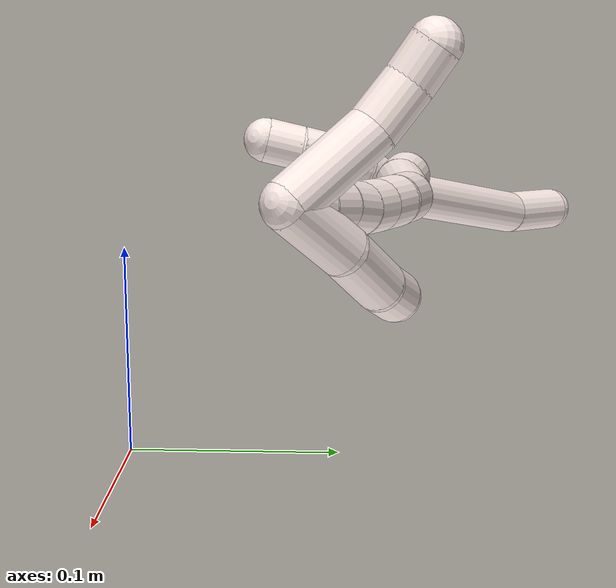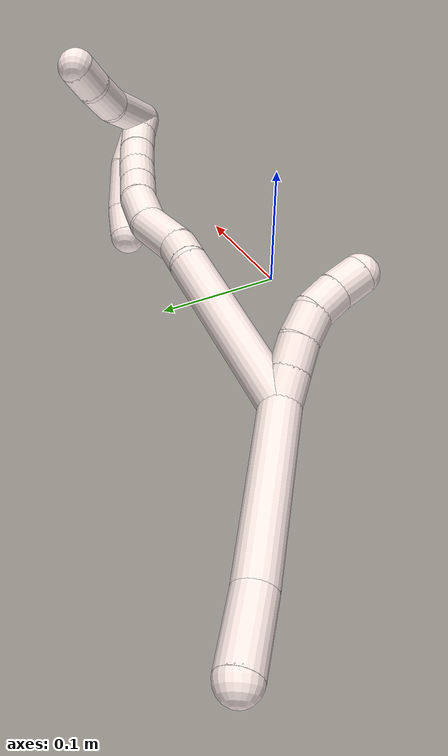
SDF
<sdf version="1.7">
 <world name="default">
  <model name="11">
   <static>0</static>
   <link name="11">
    <collision name="collision-cylinder-e_1_2_8">
     <pose>0.00629 0.001474 0.052692 -0.027973 0.118764 -0.001663</pose>
     <geometry><cylinder><radius>0.0125</radius><length>0.106173</length></cylinder></geometry>
     <surface>
      <friction><ode><mu>1.16</mu><mu2>1.16</mu2><slip1>0</slip1><slip2>0</slip2></ode></friction>
      <contact><ode><kp>1e+06</kp><kd>1</kd><max_vel>0</max_vel><min_depth>0.001</min_depth></ode></contact>
     </surface>
    </collision>
    <visual name="visual-cylinder-e_1_2_8">
     <pose>0.00629 0.001474 0.052692 -0.027973 0.118764 -0.001663</pose>
     <geometry><cylinder><radius>0.0125</radius><length>0.106173</length></cylinder></geometry>
     <material><ambient>1 0.933333 0.909804 1</ambient></material>
    </visual>
    <collision name="collision-cylinder-e_2_8_6">
     <pose>0.018125 0.001589 0.126541 0.064184 0.255812 0.008257</pose>
     <geometry><cylinder><radius>0.0125</radius><length>0.043827</length></cylinder></geometry>
     <surface>
      <friction><ode><mu>1.16</mu><mu2>1.16</mu2><slip1>0</slip1><slip2>0</slip2></ode></friction>
      <contact><ode><kp>1e+06</kp><kd>1</kd><max_vel>0</max_vel><min_depth>0.001</min_depth></ode></contact>
     </surface>
    </collision>
    <visual name="visual-cylinder-e_2_8_6">
     <pose>0.018125 0.001589 0.126541 0.064184 0.255812 0.008257</pose>
     <geometry><cylinder><radius>0.0125</radius><length>0.043827</length></cylinder></geometry>
     <material><ambient>1 0.933333 0.909804 1</ambient></material>
    </visual>
    <collision name="collision-cylinder-e_1_2_9">
     <pose>-0.000525 -0.002909 -0.009553 2.84596 -0.052486 -0.348985</pose>
     <geometry><cylinder><radius>0.0125</radius><length>0.02</length></cylinder></geometry>
     <surface>
      <friction><ode><mu>1.16</mu><mu2>1.16</mu2><slip1>0</slip1><slip2>0</slip2></ode></friction>
      <contact><ode><kp>1e+06</kp><kd>1</kd><max_vel>0</max_vel><min_depth>0.001</min_depth></ode></contact>
     </surface>
    </collision>
    <visual name="visual-cylinder-e_1_2_9">
     <pose>-0.000525 -0.002909 -0.009553 2.84596 -0.052486 -0.348985</pose>
     <geometry><cylinder><radius>0.0125</radius><length>0.02</length></cylinder></geometry>
     <material><ambient>1 0.933333 0.909804 1</ambient></material>
    </visual>
    <collision name="collision-cylinder-e_2_9_10">
     <pose>-0.001396 -0.009063 -0.028559 2.81096 -0.034724 -0.2074</pose>
     <geometry><cylinder><radius>0.0125</radius><length>0.02</length></cylinder></geometry>
     <surface>
      <friction><ode><mu>1.16</mu><mu2>1.16</mu2><slip1>0</slip1><slip2>0</slip2></ode></friction>
      <contact><ode><kp>1e+06</kp><kd>1</kd><max_vel>0</max_vel><min_depth>0.001</min_depth></ode></contact>
     </surface>
    </collision>
    <visual name="visual-cylinder-e_2_9_10">
     <pose>-0.001396 -0.009063 -0.028559 2.81096 -0.034724 -0.2074</pose>
     <geometry><cylinder><radius>0.0125</radius><length>0.02</length></cylinder></geometry>
     <material><ambient>1 0.933333 0.909804 1</ambient></material>
    </visual>
    <collision name="collision-cylinder-e_3_10_11">
     <pose>-0.003475 -0.016088 -0.047106 2.74768 -0.173996 -0.824132</pose>
     <geometry><cylinder><radius>0.0125</radius><length>0.02</length></cylinder></geometry>
     <surface>
      <friction><ode><mu>1.16</mu><mu2>1.16</mu2><slip1>0</slip1><slip2>0</slip2></ode></friction>
      <contact><ode><kp>1e+06</kp><kd>1</kd><max_vel>0</max_vel><min_depth>0.001</min_depth></ode></contact>
     </surface>
    </collision>
    <visual name="visual-cylinder-e_3_10_11">
     <pose>-0.003475 -0.016088 -0.047106 2.74768 -0.173996 -0.824132</pose>
     <geometry><cylinder><radius>0.0125</radius><length>0.02</length></cylinder></geometry>
     <material><ambient>1 0.933333 0.909804 1</ambient></material>
    </visual>
    <collision name="collision-cylinder-e_4_11_12">
     <pose>-0.009719 -0.024621 -0.063754 2.57997 -0.468197 -1.38171</pose>
     <geometry><cylinder><radius>0.0125</radius><length>0.02</length></cylinder></geometry>
     <surface>
      <friction><ode><mu>1.16</mu><mu2>1.16</mu2><slip1>0</slip1><slip2>0</slip2></ode></friction>
      <contact><ode><kp>1e+06</kp><kd>1</kd><max_vel>0</max_vel><min_depth>0.001</min_depth></ode></contact>
     </surface>
    </collision>
    <visual name="visual-cylinder-e_4_11_12">
     <pose>-0.009719 -0.024621 -0.063754 2.57997 -0.468197 -1.38171</pose>
     <geometry><cylinder><radius>0.0125</radius><length>0.02</length></cylinder></geometry>
     <material><ambient>1 0.933333 0.909804 1</ambient></material>
    </visual>
    <collision name="collision-cylinder-e_5_12_5">
     <pose>-0.019315 -0.03478 -0.07801 2.46279 -0.533248 -1.31687</pose>
     <geometry><cylinder><radius>0.0125</radius><length>0.02</length></cylinder></geometry>
     <surface>
      <friction><ode><mu>1.16</mu><mu2>1.16</mu2><slip1>0</slip1><slip2>0</slip2></ode></friction>
      <contact><ode><kp>1e+06</kp><kd>1</kd><max_vel>0</max_vel><min_depth>0.001</min_depth></ode></contact>
     </surface>
    </collision>
    <visual name="visual-cylinder-e_5_12_5">
     <pose>-0.019315 -0.03478 -0.07801 2.46279 -0.533248 -1.31687</pose>
     <geometry><cylinder><radius>0.0125</radius><length>0.02</length></cylinder></geometry>
     <material><ambient>1 0.933333 0.909804 1</ambient></material>
    </visual>
    <collision name="collision-cylinder-e_1_2_13">
     <pose>0.02114 0.019916 -0.04905 -2.7559 0.379929 -1.55536</pose>
     <geometry><cylinder><radius>0.0125</radius><length>0.114009</length></cylinder></geometry>
     <surface>
      <friction><ode><mu>1.16</mu><mu2>1.16</mu2><slip1>0</slip1><slip2>0</slip2></ode></friction>
      <contact><ode><kp>1e+06</kp><kd>1</kd><max_vel>0</max_vel><min_depth>0.001</min_depth></ode></contact>
     </surface>
    </collision>
    <visual name="visual-cylinder-e_1_2_13">
     <pose>0.02114 0.019916 -0.04905 -2.7559 0.379929 -1.55536</pose>
     <geometry><cylinder><radius>0.0125</radius><length>0.114009</length></cylinder></geometry>
     <material><ambient>1 0.933333 0.909804 1</ambient></material>
    </visual>
    <collision name="collision-cylinder-e_2_13_14">
     <pose>0.043188 0.044795 -0.1071 -2.63757 0.088052 -0.338906</pose>
     <geometry><cylinder><radius>0.0125</radius><length>0.020635</length></cylinder></geometry>
     <surface>
      <friction><ode><mu>1.16</mu><mu2>1.16</mu2><slip1>0</slip1><slip2>0</slip2></ode></friction>
      <contact><ode><kp>1e+06</kp><kd>1</kd><max_vel>0</max_vel><min_depth>0.001</min_depth></ode></contact>
     </surface>
    </collision>
    <visual name="visual-cylinder-e_2_13_14">
     <pose>0.043188 0.044795 -0.1071 -2.63757 0.088052 -0.338906</pose>
     <geometry><cylinder><radius>0.0125</radius><length>0.020635</length></cylinder></geometry>
     <material><ambient>1 0.933333 0.909804 1</ambient></material>
    </visual>
    <collision name="collision-cylinder-e_3_14_15">
     <pose>0.049139 0.060729 -0.12916 -2.44295 0.287528 -0.756551</pose>
     <geometry><cylinder><radius>0.0125</radius><length>0.035573</length></cylinder></geometry>
     <surface>
      <friction><ode><mu>1.16</mu><mu2>1.16</mu2><slip1>0</slip1><slip2>0</slip2></ode></friction>
      <contact><ode><kp>1e+06</kp><kd>1</kd><max_vel>0</max_vel><min_depth>0.001</min_depth></ode></contact>
     </surface>
    </collision>
    <visual name="visual-cylinder-e_3_14_15">
     <pose>0.049139 0.060729 -0.12916 -2.44295 0.287528 -0.756551</pose>
     <geometry><cylinder><radius>0.0125</radius><length>0.035573</length></cylinder></geometry>
     <material><ambient>1 0.933333 0.909804 1</ambient></material>
    </visual>
    <collision name="collision-cylinder-e_4_15_16">
     <pose>0.056064 0.076978 -0.155374 -2.75997 0.131897 -0.6589</pose>
     <geometry><cylinder><radius>0.0125</radius><length>0.028595</length></cylinder></geometry>
     <surface>
      <friction><ode><mu>1.16</mu><mu2>1.16</mu2><slip1>0</slip1><slip2>0</slip2></ode></friction>
      <contact><ode><kp>1e+06</kp><kd>1</kd><max_vel>0</max_vel><min_depth>0.001</min_depth></ode></contact>
     </surface>
    </collision>
    <visual name="visual-cylinder-e_4_15_16">
     <pose>0.056064 0.076978 -0.155374 -2.75997 0.131897 -0.6589</pose>
     <geometry><cylinder><radius>0.0125</radius><length>0.028595</length></cylinder></geometry>
     <material><ambient>1 0.933333 0.909804 1</ambient></material>
    </visual>
    <collision name="collision-cylinder-e_5_16_17">
     <pose>0.057276 0.085082 -0.178508 -2.86571 -0.064291 0.455238</pose>
     <geometry><cylinder><radius>0.0125</radius><length>0.020789</length></cylinder></geometry>
     <surface>
      <friction><ode><mu>1.16</mu><mu2>1.16</mu2><slip1>0</slip1><slip2>0</slip2></ode></friction>
      <contact><ode><kp>1e+06</kp><kd>1</kd><max_vel>0</max_vel><min_depth>0.001</min_depth></ode></contact>
     </surface>
    </collision>
    <visual name="visual-cylinder-e_5_16_17">
     <pose>0.057276 0.085082 -0.178508 -2.86571 -0.064291 0.455238</pose>
     <geometry><cylinder><radius>0.0125</radius><length>0.020789</length></cylinder></geometry>
     <material><ambient>1 0.933333 0.909804 1</ambient></material>
    </visual>
    <collision name="collision-cylinder-e_6_17_18">
     <pose>0.056291 0.090497 -0.198218 -2.8815 -0.031512 0.239813</pose>
     <geometry><cylinder><radius>0.0125</radius><length>0.020147</length></cylinder></geometry>
     <surface>
      <friction><ode><mu>1.16</mu><mu2>1.16</mu2><slip1>0</slip1><slip2>0</slip2></ode></friction>
      <contact><ode><kp>1e+06</kp><kd>1</kd><max_vel>0</max_vel><min_depth>0.001</min_depth></ode></contact>
     </surface>
    </collision>
    <visual name="visual-cylinder-e_6_17_18">
     <pose>0.056291 0.090497 -0.198218 -2.8815 -0.031512 0.239813</pose>
     <geometry><cylinder><radius>0.0125</radius><length>0.020147</length></cylinder></geometry>
     <material><ambient>1 0.933333 0.909804 1</ambient></material>
    </visual>
    <collision name="collision-cylinder-e_7_18_19">
     <pose>0.056058 0.09455 -0.217922 -2.99594 0.008382 -0.114773</pose>
     <geometry><cylinder><radius>0.0125</radius><length>0.020162</length></cylinder></geometry>
     <surface>
      <friction><ode><mu>1.16</mu><mu2>1.16</mu2><slip1>0</slip1><slip2>0</slip2></ode></friction>
      <contact><ode><kp>1e+06</kp><kd>1</kd><max_vel>0</max_vel><min_depth>0.001</min_depth></ode></contact>
     </surface>
    </collision>
    <visual name="visual-cylinder-e_7_18_19">
     <pose>0.056058 0.09455 -0.217922 -2.99594 0.008382 -0.114773</pose>
     <geometry><cylinder><radius>0.0125</radius><length>0.020162</length></cylinder></geometry>
     <material><ambient>1 0.933333 0.909804 1</ambient></material>
    </visual>
    <collision name="collision-cylinder-e_8_19_20">
     <pose>0.055622 0.097513 -0.237784 -2.99105 -0.052042 0.664622</pose>
     <geometry><cylinder><radius>0.0125</radius><length>0.020029</length></cylinder></geometry>
     <surface>
      <friction><ode><mu>1.16</mu><mu2>1.16</mu2><slip1>0</slip1><slip2>0</slip2></ode></friction>
      <contact><ode><kp>1e+06</kp><kd>1</kd><max_vel>0</max_vel><min_depth>0.001</min_depth></ode></contact>
     </surface>
    </collision>
    <visual name="visual-cylinder-e_8_19_20">
     <pose>0.055622 0.097513 -0.237784 -2.99105 -0.052042 0.664622</pose>
     <geometry><cylinder><radius>0.0125</radius><length>0.020029</length></cylinder></geometry>
     <material><ambient>1 0.933333 0.909804 1</ambient></material>
    </visual>
    <collision name="collision-cylinder-e_9_20_1">
     <pose>0.054026 0.099621 -0.257626 -3.08054 -0.107285 2.10737</pose>
     <geometry><cylinder><radius>0.0125</radius><length>0.020062</length></cylinder></geometry>
     <surface>
      <friction><ode><mu>1.16</mu><mu2>1.16</mu2><slip1>0</slip1><slip2>0</slip2></ode></friction>
      <contact><ode><kp>1e+06</kp><kd>1</kd><max_vel>0</max_vel><min_depth>0.001</min_depth></ode></contact>
     </surface>
    </collision>
    <visual name="visual-cylinder-e_9_20_1">
     <pose>0.054026 0.099621 -0.257626 -3.08054 -0.107285 2.10737</pose>
     <geometry><cylinder><radius>0.0125</radius><length>0.020062</length></cylinder></geometry>
     <material><ambient>1 0.933333 0.909804 1</ambient></material>
    </visual>
    <collision name="collision-cylinder-e_1_1_21">
     <pose>0.072526 0.091365 -0.252593 0.534073 0.843726 0.244338</pose>
     <geometry><cylinder><radius>0.0125</radius><length>0.052396</length></cylinder></geometry>
     <surface>
      <friction><ode><mu>1.16</mu><mu2>1.16</mu2><slip1>0</slip1><slip2>0</slip2></ode></friction>
      <contact><ode><kp>1e+06</kp><kd>1</kd><max_vel>0</max_vel><min_depth>0.001</min_depth></ode></contact>
     </surface>
    </collision>
    <visual name="visual-cylinder-e_1_1_21">
     <pose>0.072526 0.091365 -0.252593 0.534073 0.843726 0.244338</pose>
     <geometry><cylinder><radius>0.0125</radius><length>0.052396</length></cylinder></geometry>
     <material><ambient>1 0.933333 0.909804 1</ambient></material>
    </visual>
    <collision name="collision-cylinder-e_2_21_22">
     <pose>0.10349 0.076957 -0.233078 0.886147 1.00981 0.512993</pose>
     <geometry><cylinder><radius>0.0125</radius><length>0.026906</length></cylinder></geometry>
     <surface>
      <friction><ode><mu>1.16</mu><mu2>1.16</mu2><slip1>0</slip1><slip2>0</slip2></ode></friction>
      <contact><ode><kp>1e+06</kp><kd>1</kd><max_vel>0</max_vel><min_depth>0.001</min_depth></ode></contact>
     </surface>
    </collision>
    <visual name="visual-cylinder-e_2_21_22">
     <pose>0.10349 0.076957 -0.233078 0.886147 1.00981 0.512993</pose>
     <geometry><cylinder><radius>0.0125</radius><length>0.026906</length></cylinder></geometry>
     <material><ambient>1 0.933333 0.909804 1</ambient></material>
    </visual>
    <collision name="collision-cylinder-e_3_22_4">
     <pose>0.12446 0.067701 -0.227298 1.2451 1.1826 0.898187</pose>
     <geometry><cylinder><radius>0.0125</radius><length>0.020698</length></cylinder></geometry>
     <surface>
      <friction><ode><mu>1.16</mu><mu2>1.16</mu2><slip1>0</slip1><slip2>0</slip2></ode></friction>
      <contact><ode><kp>1e+06</kp><kd>1</kd><max_vel>0</max_vel><min_depth>0.001</min_depth></ode></contact>
     </surface>
    </collision>
    <visual name="visual-cylinder-e_3_22_4">
     <pose>0.12446 0.067701 -0.227298 1.2451 1.1826 0.898187</pose>
     <geometry><cylinder><radius>0.0125</radius><length>0.020698</length></cylinder></geometry>
     <material><ambient>1 0.933333 0.909804 1</ambient></material>
    </visual>
    <collision name="collision-cylinder-e_1_1_23">
     <pose>0.051197 0.108446 -0.249549 -0.427523 -0.088353 0.019191</pose>
     <geometry><cylinder><radius>0.0125</radius><length>0.039787</length></cylinder></geometry>
     <surface>
      <friction><ode><mu>1.16</mu><mu2>1.16</mu2><slip1>0</slip1><slip2>0</slip2></ode></friction>
      <contact><ode><kp>1e+06</kp><kd>1</kd><max_vel>0</max_vel><min_depth>0.001</min_depth></ode></contact>
     </surface>
    </collision>
    <visual name="visual-cylinder-e_1_1_23">
     <pose>0.051197 0.108446 -0.249549 -0.427523 -0.088353 0.019191</pose>
     <geometry><cylinder><radius>0.0125</radius><length>0.039787</length></cylinder></geometry>
     <material><ambient>1 0.933333 0.909804 1</ambient></material>
    </visual>
    <collision name="collision-cylinder-e_2_23_24">
     <pose>0.045058 0.120403 -0.213552 -0.205349 -0.234512 0.024274</pose>
     <geometry><cylinder><radius>0.0125</radius><length>0.037732</length></cylinder></geometry>
     <surface>
      <friction><ode><mu>1.16</mu><mu2>1.16</mu2><slip1>0</slip1><slip2>0</slip2></ode></friction>
      <contact><ode><kp>1e+06</kp><kd>1</kd><max_vel>0</max_vel><min_depth>0.001</min_depth></ode></contact>
     </surface>
    </collision>
    <visual name="visual-cylinder-e_2_23_24">
     <pose>0.045058 0.120403 -0.213552 -0.205349 -0.234512 0.024274</pose>
     <geometry><cylinder><radius>0.0125</radius><length>0.037732</length></cylinder></geometry>
     <material><ambient>1 0.933333 0.909804 1</ambient></material>
    </visual>
    <collision name="collision-cylinder-e_3_24_3">
     <pose>0.03806 0.123703 -0.184665 0.040413 -0.234722 -0.004765</pose>
     <geometry><cylinder><radius>0.0125</radius><length>0.022481</length></cylinder></geometry>
     <surface>
      <friction><ode><mu>1.16</mu><mu2>1.16</mu2><slip1>0</slip1><slip2>0</slip2></ode></friction>
      <contact><ode><kp>1e+06</kp><kd>1</kd><max_vel>0</max_vel><min_depth>0.001</min_depth></ode></contact>
     </surface>
    </collision>
    <visual name="visual-cylinder-e_3_24_3">
     <pose>0.03806 0.123703 -0.184665 0.040413 -0.234722 -0.004765</pose>
     <geometry><cylinder><radius>0.0125</radius><length>0.022481</length></cylinder></geometry>
     <material><ambient>1 0.933333 0.909804 1</ambient></material>
    </visual>
    <collision name="collision-sphere-3">
     <pose>0.035445 0.123262 -0.173741 0 -0 0</pose>
     <geometry><sphere><radius>0.0125</radius></sphere></geometry>
     <surface>
      <friction><ode><mu>1.16</mu><mu2>1.16</mu2><slip1>0</slip1><slip2>0</slip2></ode></friction>
      <contact><ode><kp>1e+06</kp><kd>1</kd><max_vel>0</max_vel><min_depth>0.001</min_depth></ode></contact>
     </surface>
    </collision>
    <visual name="visual-sphere-3">
     <pose>0.035445 0.123262 -0.173741 0 -0 0</pose>
     <geometry><sphere><radius>0.0125</radius></sphere></geometry>
     <material><ambient>1 0.933333 0.909804 1</ambient></material>
    </visual>
    <collision name="collision-sphere-24">
     <pose>0.040674 0.124145 -0.195588 0 -0 0</pose>
     <geometry><sphere><radius>0.0125</radius></sphere></geometry>
     <surface>
      <friction><ode><mu>1.16</mu><mu2>1.16</mu2><slip1>0</slip1><slip2>0</slip2></ode></friction>
      <contact><ode><kp>1e+06</kp><kd>1</kd><max_vel>0</max_vel><min_depth>0.001</min_depth></ode></contact>
     </surface>
    </collision>
    <visual name="visual-sphere-24">
     <pose>0.040674 0.124145 -0.195588 0 -0 0</pose>
     <geometry><sphere><radius>0.0125</radius></sphere></geometry>
     <material><ambient>1 0.933333 0.909804 1</ambient></material>
    </visual>
    <collision name="collision-sphere-23">
     <pose>0.049442 0.116662 -0.231516 0 -0 0</pose>
     <geometry><sphere><radius>0.0125</radius></sphere></geometry>
     <surface>
      <friction><ode><mu>1.16</mu><mu2>1.16</mu2><slip1>0</slip1><slip2>0</slip2></ode></friction>
      <contact><ode><kp>1e+06</kp><kd>1</kd><max_vel>0</max_vel><min_depth>0.001</min_depth></ode></contact>
     </surface>
    </collision>
    <visual name="visual-sphere-23">
     <pose>0.049442 0.116662 -0.231516 0 -0 0</pose>
     <geometry><sphere><radius>0.0125</radius></sphere></geometry>
     <material><ambient>1 0.933333 0.909804 1</ambient></material>
    </visual>
    <collision name="collision-sphere-4">
     <pose>0.134039 0.06399 -0.226045 0 -0 0</pose>
     <geometry><sphere><radius>0.0125</radius></sphere></geometry>
     <surface>
      <friction><ode><mu>1.16</mu><mu2>1.16</mu2><slip1>0</slip1><slip2>0</slip2></ode></friction>
      <contact><ode><kp>1e+06</kp><kd>1</kd><max_vel>0</max_vel><min_depth>0.001</min_depth></ode></contact>
     </surface>
    </collision>
    <visual name="visual-sphere-4">
     <pose>0.134039 0.06399 -0.226045 0 -0 0</pose>
     <geometry><sphere><radius>0.0125</radius></sphere></geometry>
     <material><ambient>1 0.933333 0.909804 1</ambient></material>
    </visual>
    <collision name="collision-sphere-22">
     <pose>0.114881 0.071413 -0.228552 0 -0 0</pose>
     <geometry><sphere><radius>0.0125</radius></sphere></geometry>
     <surface>
      <friction><ode><mu>1.16</mu><mu2>1.16</mu2><slip1>0</slip1><slip2>0</slip2></ode></friction>
      <contact><ode><kp>1e+06</kp><kd>1</kd><max_vel>0</max_vel><min_depth>0.001</min_depth></ode></contact>
     </surface>
    </collision>
    <visual name="visual-sphere-22">
     <pose>0.114881 0.071413 -0.228552 0 -0 0</pose>
     <geometry><sphere><radius>0.0125</radius></sphere></geometry>
     <material><ambient>1 0.933333 0.909804 1</ambient></material>
    </visual>
    <collision name="collision-sphere-21">
     <pose>0.092099 0.082501 -0.237604 0 -0 0</pose>
     <geometry><sphere><radius>0.0125</radius></sphere></geometry>
     <surface>
      <friction><ode><mu>1.16</mu><mu2>1.16</mu2><slip1>0</slip1><slip2>0</slip2></ode></friction>
      <contact><ode><kp>1e+06</kp><kd>1</kd><max_vel>0</max_vel><min_depth>0.001</min_depth></ode></contact>
     </surface>
    </collision>
    <visual name="visual-sphere-21">
     <pose>0.092099 0.082501 -0.237604 0 -0 0</pose>
     <geometry><sphere><radius>0.0125</radius></sphere></geometry>
     <material><ambient>1 0.933333 0.909804 1</ambient></material>
    </visual>
    <collision name="collision-sphere-1">
     <pose>0.052952 0.10023 -0.267581 0 -0 0</pose>
     <geometry><sphere><radius>0.0125</radius></sphere></geometry>
     <surface>
      <friction><ode><mu>1.16</mu><mu2>1.16</mu2><slip1>0</slip1><slip2>0</slip2></ode></friction>
      <contact><ode><kp>1e+06</kp><kd>1</kd><max_vel>0</max_vel><min_depth>0.001</min_depth></ode></contact>
     </surface>
    </collision>
    <visual name="visual-sphere-1">
     <pose>0.052952 0.10023 -0.267581 0 -0 0</pose>
     <geometry><sphere><radius>0.0125</radius></sphere></geometry>
     <material><ambient>1 0.933333 0.909804 1</ambient></material>
    </visual>
    <collision name="collision-sphere-11">
     <pose>-0.005206 -0.019868 -0.056201 0 -0 0</pose>
     <geometry><sphere><radius>0.0125</radius></sphere></geometry>
     <surface>
      <friction><ode><mu>1.16</mu><mu2>1.16</mu2><slip1>0</slip1><slip2>0</slip2></ode></friction>
      <contact><ode><kp>1e+06</kp><kd>1</kd><max_vel>0</max_vel><min_depth>0.001</min_depth></ode></contact>
     </surface>
    </collision>
    <visual name="visual-sphere-11">
     <pose>-0.005206 -0.019868 -0.056201 0 -0 0</pose>
     <geometry><sphere><radius>0.0125</radius></sphere></geometry>
     <material><ambient>1 0.933333 0.909804 1</ambient></material>
    </visual>
    <collision name="collision-sphere-10">
     <pose>-0.001744 -0.012308 -0.038011 0 -0 0</pose>
     <geometry><sphere><radius>0.0125</radius></sphere></geometry>
     <surface>
      <friction><ode><mu>1.16</mu><mu2>1.16</mu2><slip1>0</slip1><slip2>0</slip2></ode></friction>
      <contact><ode><kp>1e+06</kp><kd>1</kd><max_vel>0</max_vel><min_depth>0.001</min_depth></ode></contact>
     </surface>
    </collision>
    <visual name="visual-sphere-10">
     <pose>-0.001744 -0.012308 -0.038011 0 -0 0</pose>
     <geometry><sphere><radius>0.0125</radius></sphere></geometry>
     <material><ambient>1 0.933333 0.909804 1</ambient></material>
    </visual>
    <collision name="collision-sphere-6">
     <pose>0.02367 0.000229 0.147697 0 -0 0</pose>
     <geometry><sphere><radius>0.0125</radius></sphere></geometry>
     <surface>
      <friction><ode><mu>1.16</mu><mu2>1.16</mu2><slip1>0</slip1><slip2>0</slip2></ode></friction>
      <contact><ode><kp>1e+06</kp><kd>1</kd><max_vel>0</max_vel><min_depth>0.001</min_depth></ode></contact>
     </surface>
    </collision>
    <visual name="visual-sphere-6">
     <pose>0.02367 0.000229 0.147697 0 -0 0</pose>
     <geometry><sphere><radius>0.0125</radius></sphere></geometry>
     <material><ambient>1 0.933333 0.909804 1</ambient></material>
    </visual>
    <collision name="collision-sphere-9">
     <pose>-0.001049 -0.005819 -0.019106 0 -0 0</pose>
     <geometry><sphere><radius>0.0125</radius></sphere></geometry>
     <surface>
      <friction><ode><mu>1.16</mu><mu2>1.16</mu2><slip1>0</slip1><slip2>0</slip2></ode></friction>
      <contact><ode><kp>1e+06</kp><kd>1</kd><max_vel>0</max_vel><min_depth>0.001</min_depth></ode></contact>
     </surface>
    </collision>
    <visual name="visual-sphere-9">
     <pose>-0.001049 -0.005819 -0.019106 0 -0 0</pose>
     <geometry><sphere><radius>0.0125</radius></sphere></geometry>
     <material><ambient>1 0.933333 0.909804 1</ambient></material>
    </visual>
    <collision name="collision-sphere-2">
     <geometry><sphere><radius>0.0125</radius></sphere></geometry>
     <surface>
      <friction><ode><mu>1.16</mu><mu2>1.16</mu2><slip1>0</slip1><slip2>0</slip2></ode></friction>
      <contact><ode><kp>1e+06</kp><kd>1</kd><max_vel>0</max_vel><min_depth>0.001</min_depth></ode></contact>
     </surface>
    </collision>
    <visual name="visual-sphere-2">
     <geometry><sphere><radius>0.0125</radius></sphere></geometry>
     <material><ambient>1 0.933333 0.909804 1</ambient></material>
    </visual>
    <collision name="collision-sphere-19">
     <pose>0.056142 0.096013 -0.227896 0 -0 0</pose>
     <geometry><sphere><radius>0.0125</radius></sphere></geometry>
     <surface>
      <friction><ode><mu>1.16</mu><mu2>1.16</mu2><slip1>0</slip1><slip2>0</slip2></ode></friction>
      <contact><ode><kp>1e+06</kp><kd>1</kd><max_vel>0</max_vel><min_depth>0.001</min_depth></ode></contact>
     </surface>
    </collision>
    <visual name="visual-sphere-19">
     <pose>0.056142 0.096013 -0.227896 0 -0 0</pose>
     <geometry><sphere><radius>0.0125</radius></sphere></geometry>
     <material><ambient>1 0.933333 0.909804 1</ambient></material>
    </visual>
    <collision name="collision-sphere-8">
     <pose>0.01258 0.002949 0.105384 0 -0 0</pose>
     <geometry><sphere><radius>0.0125</radius></sphere></geometry>
     <surface>
      <friction><ode><mu>1.16</mu><mu2>1.16</mu2><slip1>0</slip1><slip2>0</slip2></ode></friction>
      <contact><ode><kp>1e+06</kp><kd>1</kd><max_vel>0</max_vel><min_depth>0.001</min_depth></ode></contact>
     </surface>
    </collision>
    <visual name="visual-sphere-8">
     <pose>0.01258 0.002949 0.105384 0 -0 0</pose>
     <geometry><sphere><radius>0.0125</radius></sphere></geometry>
     <material><ambient>1 0.933333 0.909804 1</ambient></material>
    </visual>
    <collision name="collision-sphere-12">
     <pose>-0.014232 -0.029373 -0.071307 0 -0 0</pose>
     <geometry><sphere><radius>0.0125</radius></sphere></geometry>
     <surface>
      <friction><ode><mu>1.16</mu><mu2>1.16</mu2><slip1>0</slip1><slip2>0</slip2></ode></friction>
      <contact><ode><kp>1e+06</kp><kd>1</kd><max_vel>0</max_vel><min_depth>0.001</min_depth></ode></contact>
     </surface>
    </collision>
    <visual name="visual-sphere-12">
     <pose>-0.014232 -0.029373 -0.071307 0 -0 0</pose>
     <geometry><sphere><radius>0.0125</radius></sphere></geometry>
     <material><ambient>1 0.933333 0.909804 1</ambient></material>
    </visual>
    <collision name="collision-sphere-5">
     <pose>-0.024398 -0.040187 -0.084712 0 -0 0</pose>
     <geometry><sphere><radius>0.0125</radius></sphere></geometry>
     <surface>
      <friction><ode><mu>1.16</mu><mu2>1.16</mu2><slip1>0</slip1><slip2>0</slip2></ode></friction>
      <contact><ode><kp>1e+06</kp><kd>1</kd><max_vel>0</max_vel><min_depth>0.001</min_depth></ode></contact>
     </surface>
    </collision>
    <visual name="visual-sphere-5">
     <pose>-0.024398 -0.040187 -0.084712 0 -0 0</pose>
     <geometry><sphere><radius>0.0125</radius></sphere></geometry>
     <material><ambient>1 0.933333 0.909804 1</ambient></material>
    </visual>
    <collision name="collision-sphere-13">
     <pose>0.042281 0.039832 -0.098101 0 -0 0</pose>
     <geometry><sphere><radius>0.0125</radius></sphere></geometry>
     <surface>
      <friction><ode><mu>1.16</mu><mu2>1.16</mu2><slip1>0</slip1><slip2>0</slip2></ode></friction>
      <contact><ode><kp>1e+06</kp><kd>1</kd><max_vel>0</max_vel><min_depth>0.001</min_depth></ode></contact>
     </surface>
    </collision>
    <visual name="visual-sphere-13">
     <pose>0.042281 0.039832 -0.098101 0 -0 0</pose>
     <geometry><sphere><radius>0.0125</radius></sphere></geometry>
     <material><ambient>1 0.933333 0.909804 1</ambient></material>
    </visual>
    <collision name="collision-sphere-14">
     <pose>0.044095 0.049759 -0.1161 0 -0 0</pose>
     <geometry><sphere><radius>0.0125</radius></sphere></geometry>
     <surface>
      <friction><ode><mu>1.16</mu><mu2>1.16</mu2><slip1>0</slip1><slip2>0</slip2></ode></friction>
      <contact><ode><kp>1e+06</kp><kd>1</kd><max_vel>0</max_vel><min_depth>0.001</min_depth></ode></contact>
     </surface>
    </collision>
    <visual name="visual-sphere-14">
     <pose>0.044095 0.049759 -0.1161 0 -0 0</pose>
     <geometry><sphere><radius>0.0125</radius></sphere></geometry>
     <material><ambient>1 0.933333 0.909804 1</ambient></material>
    </visual>
    <collision name="collision-sphere-15">
     <pose>0.054183 0.0717 -0.14222 0 -0 0</pose>
     <geometry><sphere><radius>0.0125</radius></sphere></geometry>
     <surface>
      <friction><ode><mu>1.16</mu><mu2>1.16</mu2><slip1>0</slip1><slip2>0</slip2></ode></friction>
      <contact><ode><kp>1e+06</kp><kd>1</kd><max_vel>0</max_vel><min_depth>0.001</min_depth></ode></contact>
     </surface>
    </collision>
    <visual name="visual-sphere-15">
     <pose>0.054183 0.0717 -0.14222 0 -0 0</pose>
     <geometry><sphere><radius>0.0125</radius></sphere></geometry>
     <material><ambient>1 0.933333 0.909804 1</ambient></material>
    </visual>
    <collision name="collision-sphere-16">
     <pose>0.057944 0.082257 -0.168527 0 -0 0</pose>
     <geometry><sphere><radius>0.0125</radius></sphere></geometry>
     <surface>
      <friction><ode><mu>1.16</mu><mu2>1.16</mu2><slip1>0</slip1><slip2>0</slip2></ode></friction>
      <contact><ode><kp>1e+06</kp><kd>1</kd><max_vel>0</max_vel><min_depth>0.001</min_depth></ode></contact>
     </surface>
    </collision>
    <visual name="visual-sphere-16">
     <pose>0.057944 0.082257 -0.168527 0 -0 0</pose>
     <geometry><sphere><radius>0.0125</radius></sphere></geometry>
     <material><ambient>1 0.933333 0.909804 1</ambient></material>
    </visual>
    <collision name="collision-sphere-17">
     <pose>0.056608 0.087908 -0.188488 0 -0 0</pose>
     <geometry><sphere><radius>0.0125</radius></sphere></geometry>
     <surface>
      <friction><ode><mu>1.16</mu><mu2>1.16</mu2><slip1>0</slip1><slip2>0</slip2></ode></friction>
      <contact><ode><kp>1e+06</kp><kd>1</kd><max_vel>0</max_vel><min_depth>0.001</min_depth></ode></contact>
     </surface>
    </collision>
    <visual name="visual-sphere-17">
     <pose>0.056608 0.087908 -0.188488 0 -0 0</pose>
     <geometry><sphere><radius>0.0125</radius></sphere></geometry>
     <material><ambient>1 0.933333 0.909804 1</ambient></material>
    </visual>
    <collision name="collision-sphere-18">
     <pose>0.055973 0.093086 -0.207948 0 -0 0</pose>
     <geometry><sphere><radius>0.0125</radius></sphere></geometry>
     <surface>
      <friction><ode><mu>1.16</mu><mu2>1.16</mu2><slip1>0</slip1><slip2>0</slip2></ode></friction>
      <contact><ode><kp>1e+06</kp><kd>1</kd><max_vel>0</max_vel><min_depth>0.001</min_depth></ode></contact>
     </surface>
    </collision>
    <visual name="visual-sphere-18">
     <pose>0.055973 0.093086 -0.207948 0 -0 0</pose>
     <geometry><sphere><radius>0.0125</radius></sphere></geometry>
     <material><ambient>1 0.933333 0.909804 1</ambient></material>
    </visual>
    <collision name="collision-sphere-20">
     <pose>0.055101 0.099012 -0.247672 0 -0 0</pose>
     <geometry><sphere><radius>0.0125</radius></sphere></geometry>
     <surface>
      <friction><ode><mu>1.16</mu><mu2>1.16</mu2><slip1>0</slip1><slip2>0</slip2></ode></friction>
      <contact><ode><kp>1e+06</kp><kd>1</kd><max_vel>0</max_vel><min_depth>0.001</min_depth></ode></contact>
     </surface>
    </collision>
    <visual name="visual-sphere-20">
     <pose>0.055101 0.099012 -0.247672 0 -0 0</pose>
     <geometry><sphere><radius>0.0125</radius></sphere></geometry>
     <material><ambient>1 0.933333 0.909804 1</ambient></material>
    </visual>
    <inertial>
     <pose>0.035776 0.047175 -0.104822 0 -0 0</pose>
     <mass>0.75</mass>
     <inertia>
      <ixx>4.2e-05</ixx>
      <ixy>0</ixy>
      <ixz>0</ixz>
      <iyy>2.7e-05</iyy>
      <iyz>0</iyz>
      <izz>-0.000127</izz>
     </inertia>
    </inertial>
   </link>
   <pose>-0.216805 0.127665 0.082865 -2.01092 -0.714821 1.32824</pose>
  </model>
 </world>
</sdf>
